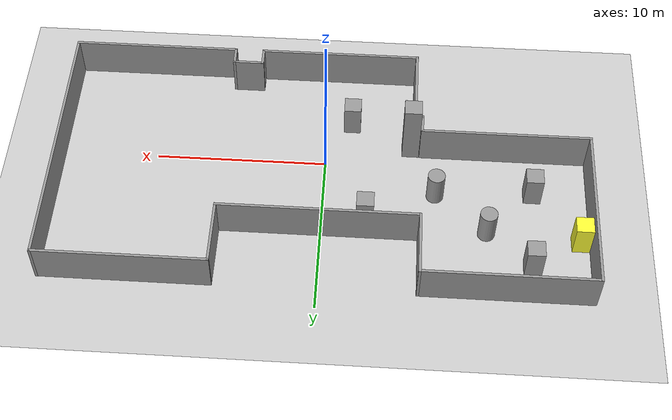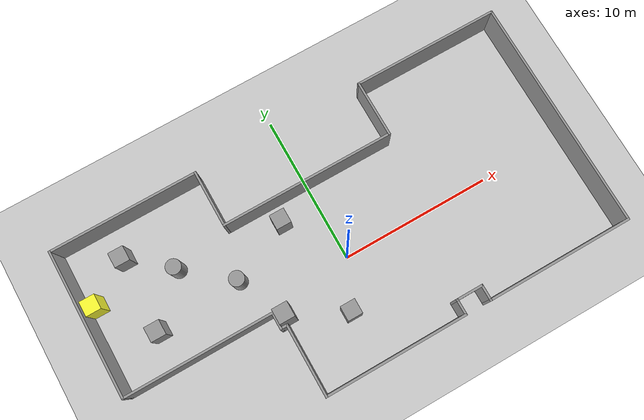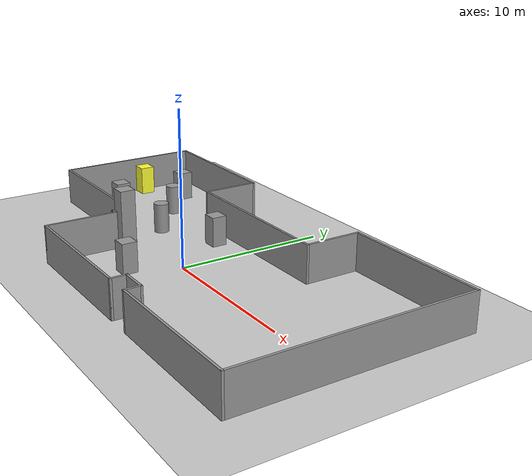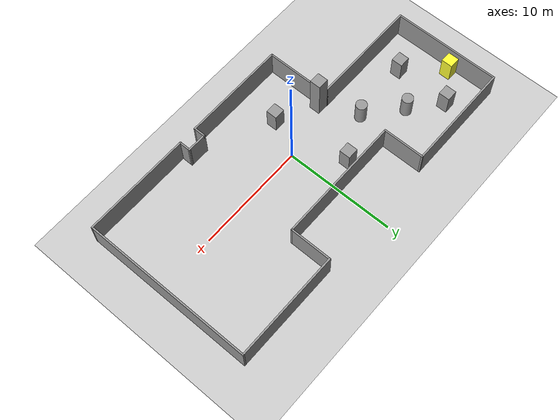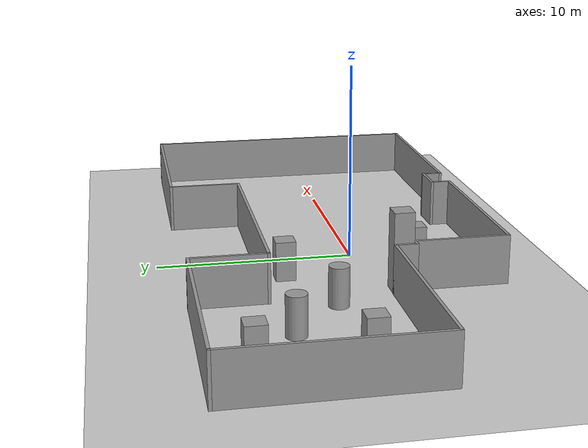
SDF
<sdf version="1.7">
 <world name="default">
  <model name="ground_plane">
   <static>1</static>
   <link name="link">
    <collision name="collision">
     <geometry><plane><normal>0 0 1</normal><size>100 100</size></plane></geometry>
     <surface>
      <contact><collide_bitmask>65535</collide_bitmask></contact>
      <friction><ode><mu>100</mu><mu2>50</mu2></ode></friction>
     </surface>
    </collision>
    <visual name="visual">
     <cast_shadows>0</cast_shadows>
     <geometry><plane><normal>0 0 1</normal><size>100 100</size></plane></geometry>
     <material>
      <script><uri>file://media/materials/scripts/gazebo.material</uri><name>Gazebo/Grey</name></script>
     </material>
    </visual>
   </link>
  </model>
  <model name="Engine5_B1">
   <link name="Wall_0">
    <pose>15.51 0 0 0 0 -1.5708</pose>
    <visual name="Wall_0_Visual">
     <pose>0 0 1.25 0 -0 0</pose>
     <geometry><box><size>15.62 0.15 2.5</size></box></geometry>
     <material>
      <script><uri>file://media/materials/scripts/gazebo.material</uri><name>Gazebo/Grey</name></script>
      <ambient>1 1 1 1</ambient>
      <shader type="pixel"/>
     </material>
     <meta><layer>0</layer></meta>
    </visual>
    <collision name="Wall_0_Collision">
     <pose>0 0 1.25 0 -0 0</pose>
     <geometry><box><size>15.62 0.15 2.5</size></box></geometry>
     <surface>
      <friction>
       <ode><mu>1</mu><mu2>1</mu2><fdir1>0 0 0</fdir1><slip1>0</slip1><slip2>0</slip2></ode>
       <torsional>
        <coefficient>1</coefficient>
        <patch_radius>0</patch_radius>
        <surface_radius>0</surface_radius>
        <use_patch_radius>1</use_patch_radius>
        <ode><slip>0</slip></ode>
       </torsional>
      </friction>
      <bounce><restitution_coefficient>0</restitution_coefficient><threshold>1e+06</threshold></bounce>
      <contact>
       <collide_without_contact>0</collide_without_contact>
       <collide_without_contact_bitmask>1</collide_without_contact_bitmask>
       <collide_bitmask>1</collide_bitmask>
       <ode>
        <soft_cfm>0</soft_cfm>
        <soft_erp>0.2</soft_erp>
        <kp>1e+13</kp>
        <kd>1</kd>
        <max_vel>0.01</max_vel>
        <min_depth>0</min_depth>
       </ode>
       <bullet>
        <split_impulse>1</split_impulse>
        <split_impulse_penetration_threshold>-0.01</split_impulse_penetration_threshold>
        <soft_cfm>0</soft_cfm>
        <soft_erp>0.2</soft_erp>
        <kp>1e+13</kp>
        <kd>1</kd>
       </bullet>
      </contact>
     </surface>
    </collision>
   </link>
   <link name="Wall_11">
    <pose>-10.62 7.735 0 0 -0 3.14159</pose>
    <visual name="Wall_11_Visual">
     <pose>0 0 1.25 0 -0 0</pose>
     <geometry><box><size>9.93 0.15 2.5</size></box></geometry>
     <material>
      <script><uri>file://media/materials/scripts/gazebo.material</uri><name>Gazebo/Grey</name></script>
      <ambient>1 1 1 1</ambient>
      <shader type="pixel"/>
     </material>
     <meta><layer>0</layer></meta>
    </visual>
    <collision name="Wall_11_Collision">
     <pose>0 0 1.25 0 -0 0</pose>
     <geometry><box><size>9.93 0.15 2.5</size></box></geometry>
     <surface>
      <friction>
       <ode><mu>1</mu><mu2>1</mu2><fdir1>0 0 0</fdir1><slip1>0</slip1><slip2>0</slip2></ode>
       <torsional>
        <coefficient>1</coefficient>
        <patch_radius>0</patch_radius>
        <surface_radius>0</surface_radius>
        <use_patch_radius>1</use_patch_radius>
        <ode><slip>0</slip></ode>
       </torsional>
      </friction>
      <bounce><restitution_coefficient>0</restitution_coefficient><threshold>1e+06</threshold></bounce>
      <contact>
       <collide_without_contact>0</collide_without_contact>
       <collide_without_contact_bitmask>1</collide_without_contact_bitmask>
       <collide_bitmask>1</collide_bitmask>
       <ode>
        <soft_cfm>0</soft_cfm>
        <soft_erp>0.2</soft_erp>
        <kp>1e+13</kp>
        <kd>1</kd>
        <max_vel>0.01</max_vel>
        <min_depth>0</min_depth>
       </ode>
       <bullet>
        <split_impulse>1</split_impulse>
        <split_impulse_penetration_threshold>-0.01</split_impulse_penetration_threshold>
        <soft_cfm>0</soft_cfm>
        <soft_erp>0.2</soft_erp>
        <kp>1e+13</kp>
        <kd>1</kd>
       </bullet>
      </contact>
     </surface>
    </collision>
   </link>
   <link name="Wall_13">
    <pose>-15.51 2.86 0 0 0 -1.5708</pose>
    <visual name="Wall_13_Visual">
     <pose>0 0 1.25 0 -0 0</pose>
     <geometry><box><size>9.9 0.15 2.5</size></box></geometry>
     <material>
      <script><uri>file://media/materials/scripts/gazebo.material</uri><name>Gazebo/Grey</name></script>
      <ambient>1 1 1 1</ambient>
      <shader type="pixel"/>
     </material>
     <meta><layer>0</layer></meta>
    </visual>
    <collision name="Wall_13_Collision">
     <pose>0 0 1.25 0 -0 0</pose>
     <geometry><box><size>9.9 0.15 2.5</size></box></geometry>
     <surface>
      <friction>
       <ode><mu>1</mu><mu2>1</mu2><fdir1>0 0 0</fdir1><slip1>0</slip1><slip2>0</slip2></ode>
       <torsional>
        <coefficient>1</coefficient>
        <patch_radius>0</patch_radius>
        <surface_radius>0</surface_radius>
        <use_patch_radius>1</use_patch_radius>
        <ode><slip>0</slip></ode>
       </torsional>
      </friction>
      <bounce><restitution_coefficient>0</restitution_coefficient><threshold>1e+06</threshold></bounce>
      <contact>
       <collide_without_contact>0</collide_without_contact>
       <collide_without_contact_bitmask>1</collide_without_contact_bitmask>
       <collide_bitmask>1</collide_bitmask>
       <ode>
        <soft_cfm>0</soft_cfm>
        <soft_erp>0.2</soft_erp>
        <kp>1e+13</kp>
        <kd>1</kd>
        <max_vel>0.01</max_vel>
        <min_depth>0</min_depth>
       </ode>
       <bullet>
        <split_impulse>1</split_impulse>
        <split_impulse_penetration_threshold>-0.01</split_impulse_penetration_threshold>
        <soft_cfm>0</soft_cfm>
        <soft_erp>0.2</soft_erp>
        <kp>1e+13</kp>
        <kd>1</kd>
       </bullet>
      </contact>
     </surface>
    </collision>
   </link>
   <link name="Wall_15">
    <pose>-10.62 -2.015 0 0 -0 0</pose>
    <visual name="Wall_15_Visual">
     <pose>0 0 1.25 0 -0 0</pose>
     <geometry><box><size>9.93 0.15 2.5</size></box></geometry>
     <material>
      <script><uri>file://media/materials/scripts/gazebo.material</uri><name>Gazebo/Grey</name></script>
      <ambient>1 1 1 1</ambient>
      <shader type="pixel"/>
     </material>
     <meta><layer>0</layer></meta>
    </visual>
    <collision name="Wall_15_Collision">
     <pose>0 0 1.25 0 -0 0</pose>
     <geometry><box><size>9.93 0.15 2.5</size></box></geometry>
     <surface>
      <friction>
       <ode><mu>1</mu><mu2>1</mu2><fdir1>0 0 0</fdir1><slip1>0</slip1><slip2>0</slip2></ode>
       <torsional>
        <coefficient>1</coefficient>
        <patch_radius>0</patch_radius>
        <surface_radius>0</surface_radius>
        <use_patch_radius>1</use_patch_radius>
        <ode><slip>0</slip></ode>
       </torsional>
      </friction>
      <bounce><restitution_coefficient>0</restitution_coefficient><threshold>1e+06</threshold></bounce>
      <contact>
       <collide_without_contact>0</collide_without_contact>
       <collide_without_contact_bitmask>1</collide_without_contact_bitmask>
       <collide_bitmask>1</collide_bitmask>
       <ode>
        <soft_cfm>0</soft_cfm>
        <soft_erp>0.2</soft_erp>
        <kp>1e+13</kp>
        <kd>1</kd>
        <max_vel>0.01</max_vel>
        <min_depth>0</min_depth>
       </ode>
       <bullet>
        <split_impulse>1</split_impulse>
        <split_impulse_penetration_threshold>-0.01</split_impulse_penetration_threshold>
        <soft_cfm>0</soft_cfm>
        <soft_erp>0.2</soft_erp>
        <kp>1e+13</kp>
        <kd>1</kd>
       </bullet>
      </contact>
     </surface>
    </collision>
   </link>
   <link name="Wall_17">
    <pose>-5.73 -2.535 0 0 0 -1.5708</pose>
    <visual name="Wall_17_Visual">
     <pose>0 0 1.25 0 -0 0</pose>
     <geometry><box><size>1.19 0.15 2.5</size></box></geometry>
     <material>
      <script><uri>file://media/materials/scripts/gazebo.material</uri><name>Gazebo/Grey</name></script>
      <ambient>1 1 1 1</ambient>
      <shader type="pixel"/>
     </material>
     <meta><layer>0</layer></meta>
    </visual>
    <collision name="Wall_17_Collision">
     <pose>0 0 1.25 0 -0 0</pose>
     <geometry><box><size>1.19 0.15 2.5</size></box></geometry>
     <surface>
      <friction>
       <ode><mu>1</mu><mu2>1</mu2><fdir1>0 0 0</fdir1><slip1>0</slip1><slip2>0</slip2></ode>
       <torsional>
        <coefficient>1</coefficient>
        <patch_radius>0</patch_radius>
        <surface_radius>0</surface_radius>
        <use_patch_radius>1</use_patch_radius>
        <ode><slip>0</slip></ode>
       </torsional>
      </friction>
      <bounce><restitution_coefficient>0</restitution_coefficient><threshold>1e+06</threshold></bounce>
      <contact>
       <collide_without_contact>0</collide_without_contact>
       <collide_without_contact_bitmask>1</collide_without_contact_bitmask>
       <collide_bitmask>1</collide_bitmask>
       <ode>
        <soft_cfm>0</soft_cfm>
        <soft_erp>0.2</soft_erp>
        <kp>1e+13</kp>
        <kd>1</kd>
        <max_vel>0.01</max_vel>
        <min_depth>0</min_depth>
       </ode>
       <bullet>
        <split_impulse>1</split_impulse>
        <split_impulse_penetration_threshold>-0.01</split_impulse_penetration_threshold>
        <soft_cfm>0</soft_cfm>
        <soft_erp>0.2</soft_erp>
        <kp>1e+13</kp>
        <kd>1</kd>
       </bullet>
      </contact>
     </surface>
    </collision>
   </link>
   <link name="Wall_19">
    <pose>-5.53 -3.055 0 0 -0 0</pose>
    <visual name="Wall_19_Visual">
     <pose>0 0 1.25 0 -0 0</pose>
     <geometry><box><size>0.55 0.15 2.5</size></box></geometry>
     <material>
      <script><uri>file://media/materials/scripts/gazebo.material</uri><name>Gazebo/Grey</name></script>
      <ambient>1 1 1 1</ambient>
      <shader type="pixel"/>
     </material>
     <meta><layer>0</layer></meta>
    </visual>
    <collision name="Wall_19_Collision">
     <pose>0 0 1.25 0 -0 0</pose>
     <geometry><box><size>0.55 0.15 2.5</size></box></geometry>
     <surface>
      <friction>
       <ode><mu>1</mu><mu2>1</mu2><fdir1>0 0 0</fdir1><slip1>0</slip1><slip2>0</slip2></ode>
       <torsional>
        <coefficient>1</coefficient>
        <patch_radius>0</patch_radius>
        <surface_radius>0</surface_radius>
        <use_patch_radius>1</use_patch_radius>
        <ode><slip>0</slip></ode>
       </torsional>
      </friction>
      <bounce><restitution_coefficient>0</restitution_coefficient><threshold>1e+06</threshold></bounce>
      <contact>
       <collide_without_contact>0</collide_without_contact>
       <collide_without_contact_bitmask>1</collide_without_contact_bitmask>
       <collide_bitmask>1</collide_bitmask>
       <ode>
        <soft_cfm>0</soft_cfm>
        <soft_erp>0.2</soft_erp>
        <kp>1e+13</kp>
        <kd>1</kd>
        <max_vel>0.01</max_vel>
        <min_depth>0</min_depth>
       </ode>
       <bullet>
        <split_impulse>1</split_impulse>
        <split_impulse_penetration_threshold>-0.01</split_impulse_penetration_threshold>
        <soft_cfm>0</soft_cfm>
        <soft_erp>0.2</soft_erp>
        <kp>1e+13</kp>
        <kd>1</kd>
       </bullet>
      </contact>
     </surface>
    </collision>
   </link>
   <link name="Wall_21">
    <pose>-5.33 -5.395 0 0 0 -1.5708</pose>
    <visual name="Wall_21_Visual">
     <pose>0 0 1.25 0 -0 0</pose>
     <geometry><box><size>4.83 0.15 2.5</size></box></geometry>
     <material>
      <script><uri>file://media/materials/scripts/gazebo.material</uri><name>Gazebo/Grey</name></script>
      <ambient>1 1 1 1</ambient>
      <shader type="pixel"/>
     </material>
     <meta><layer>0</layer></meta>
    </visual>
    <collision name="Wall_21_Collision">
     <pose>0 0 1.25 0 -0 0</pose>
     <geometry><box><size>4.83 0.15 2.5</size></box></geometry>
     <surface>
      <friction>
       <ode><mu>1</mu><mu2>1</mu2><fdir1>0 0 0</fdir1><slip1>0</slip1><slip2>0</slip2></ode>
       <torsional>
        <coefficient>1</coefficient>
        <patch_radius>0</patch_radius>
        <surface_radius>0</surface_radius>
        <use_patch_radius>1</use_patch_radius>
        <ode><slip>0</slip></ode>
       </torsional>
      </friction>
      <bounce><restitution_coefficient>0</restitution_coefficient><threshold>1e+06</threshold></bounce>
      <contact>
       <collide_without_contact>0</collide_without_contact>
       <collide_without_contact_bitmask>1</collide_without_contact_bitmask>
       <collide_bitmask>1</collide_bitmask>
       <ode>
        <soft_cfm>0</soft_cfm>
        <soft_erp>0.2</soft_erp>
        <kp>1e+13</kp>
        <kd>1</kd>
        <max_vel>0.01</max_vel>
        <min_depth>0</min_depth>
       </ode>
       <bullet>
        <split_impulse>1</split_impulse>
        <split_impulse_penetration_threshold>-0.01</split_impulse_penetration_threshold>
        <soft_cfm>0</soft_cfm>
        <soft_erp>0.2</soft_erp>
        <kp>1e+13</kp>
        <kd>1</kd>
       </bullet>
      </contact>
     </surface>
    </collision>
   </link>
   <link name="Wall_25">
    <pose>10.64 -7.735 0 0 -0 3.14159</pose>
    <visual name="Wall_25_Visual">
     <pose>0 0 1.25 0 -0 0</pose>
     <geometry><box><size>9.89 0.15 2.5</size></box></geometry>
     <material>
      <script><uri>file://media/materials/scripts/gazebo.material</uri><name>Gazebo/Grey</name></script>
      <ambient>1 1 1 1</ambient>
      <shader type="pixel"/>
     </material>
     <meta><layer>0</layer></meta>
    </visual>
    <collision name="Wall_25_Collision">
     <pose>0 0 1.25 0 -0 0</pose>
     <geometry><box><size>9.89 0.15 2.5</size></box></geometry>
     <surface>
      <friction>
       <ode><mu>1</mu><mu2>1</mu2><fdir1>0 0 0</fdir1><slip1>0</slip1><slip2>0</slip2></ode>
       <torsional>
        <coefficient>1</coefficient>
        <patch_radius>0</patch_radius>
        <surface_radius>0</surface_radius>
        <use_patch_radius>1</use_patch_radius>
        <ode><slip>0</slip></ode>
       </torsional>
      </friction>
      <bounce><restitution_coefficient>0</restitution_coefficient><threshold>1e+06</threshold></bounce>
      <contact>
       <collide_without_contact>0</collide_without_contact>
       <collide_without_contact_bitmask>1</collide_without_contact_bitmask>
       <collide_bitmask>1</collide_bitmask>
       <ode>
        <soft_cfm>0</soft_cfm>
        <soft_erp>0.2</soft_erp>
        <kp>1e+13</kp>
        <kd>1</kd>
        <max_vel>0.01</max_vel>
        <min_depth>0</min_depth>
       </ode>
       <bullet>
        <split_impulse>1</split_impulse>
        <split_impulse_penetration_threshold>-0.01</split_impulse_penetration_threshold>
        <soft_cfm>0</soft_cfm>
        <soft_erp>0.2</soft_erp>
        <kp>1e+13</kp>
        <kd>1</kd>
       </bullet>
      </contact>
     </surface>
    </collision>
   </link>
   <link name="Wall_27">
    <pose>5.77 -7.24 0 0 -0 1.5708</pose>
    <visual name="Wall_27_Visual">
     <pose>0 0 1.25 0 -0 0</pose>
     <geometry><box><size>1.14 0.15 2.5</size></box></geometry>
     <material>
      <script><uri>file://media/materials/scripts/gazebo.material</uri><name>Gazebo/Grey</name></script>
      <ambient>1 1 1 1</ambient>
      <shader type="pixel"/>
     </material>
     <meta><layer>0</layer></meta>
    </visual>
    <collision name="Wall_27_Collision">
     <pose>0 0 1.25 0 -0 0</pose>
     <geometry><box><size>1.14 0.15 2.5</size></box></geometry>
     <surface>
      <friction>
       <ode><mu>1</mu><mu2>1</mu2><fdir1>0 0 0</fdir1><slip1>0</slip1><slip2>0</slip2></ode>
       <torsional>
        <coefficient>1</coefficient>
        <patch_radius>0</patch_radius>
        <surface_radius>0</surface_radius>
        <use_patch_radius>1</use_patch_radius>
        <ode><slip>0</slip></ode>
       </torsional>
      </friction>
      <bounce><restitution_coefficient>0</restitution_coefficient><threshold>1e+06</threshold></bounce>
      <contact>
       <collide_without_contact>0</collide_without_contact>
       <collide_without_contact_bitmask>1</collide_without_contact_bitmask>
       <collide_bitmask>1</collide_bitmask>
       <ode>
        <soft_cfm>0</soft_cfm>
        <soft_erp>0.2</soft_erp>
        <kp>1e+13</kp>
        <kd>1</kd>
        <max_vel>0.01</max_vel>
        <min_depth>0</min_depth>
       </ode>
       <bullet>
        <split_impulse>1</split_impulse>
        <split_impulse_penetration_threshold>-0.01</split_impulse_penetration_threshold>
        <soft_cfm>0</soft_cfm>
        <soft_erp>0.2</soft_erp>
        <kp>1e+13</kp>
        <kd>1</kd>
       </bullet>
      </contact>
     </surface>
    </collision>
   </link>
   <link name="Wall_29">
    <pose>4.915 -6.745 0 0 -0 3.14159</pose>
    <visual name="Wall_29_Visual">
     <pose>0 0 1.25 0 -0 0</pose>
     <geometry><box><size>1.86 0.15 2.5</size></box></geometry>
     <material>
      <script><uri>file://media/materials/scripts/gazebo.material</uri><name>Gazebo/Grey</name></script>
      <ambient>1 1 1 1</ambient>
      <shader type="pixel"/>
     </material>
     <meta><layer>0</layer></meta>
    </visual>
    <collision name="Wall_29_Collision">
     <pose>0 0 1.25 0 -0 0</pose>
     <geometry><box><size>1.86 0.15 2.5</size></box></geometry>
     <surface>
      <friction>
       <ode><mu>1</mu><mu2>1</mu2><fdir1>0 0 0</fdir1><slip1>0</slip1><slip2>0</slip2></ode>
       <torsional>
        <coefficient>1</coefficient>
        <patch_radius>0</patch_radius>
        <surface_radius>0</surface_radius>
        <use_patch_radius>1</use_patch_radius>
        <ode><slip>0</slip></ode>
       </torsional>
      </friction>
      <bounce><restitution_coefficient>0</restitution_coefficient><threshold>1e+06</threshold></bounce>
      <contact>
       <collide_without_contact>0</collide_without_contact>
       <collide_without_contact_bitmask>1</collide_without_contact_bitmask>
       <collide_bitmask>1</collide_bitmask>
       <ode>
        <soft_cfm>0</soft_cfm>
        <soft_erp>0.2</soft_erp>
        <kp>1e+13</kp>
        <kd>1</kd>
        <max_vel>0.01</max_vel>
        <min_depth>0</min_depth>
       </ode>
       <bullet>
        <split_impulse>1</split_impulse>
        <split_impulse_penetration_threshold>-0.01</split_impulse_penetration_threshold>
        <soft_cfm>0</soft_cfm>
        <soft_erp>0.2</soft_erp>
        <kp>1e+13</kp>
        <kd>1</kd>
       </bullet>
      </contact>
     </surface>
    </collision>
   </link>
   <link name="Wall_3">
    <pose>10.64 7.735 0 0 -0 3.14159</pose>
    <visual name="Wall_3_Visual">
     <pose>0 0 1.25 0 -0 0</pose>
     <geometry><box><size>9.89 0.15 2.5</size></box></geometry>
     <material>
      <script><uri>file://media/materials/scripts/gazebo.material</uri><name>Gazebo/Grey</name></script>
      <ambient>1 1 1 1</ambient>
      <shader type="pixel"/>
     </material>
     <meta><layer>0</layer></meta>
    </visual>
    <collision name="Wall_3_Collision">
     <pose>0 0 1.25 0 -0 0</pose>
     <geometry><box><size>9.89 0.15 2.5</size></box></geometry>
     <surface>
      <friction>
       <ode><mu>1</mu><mu2>1</mu2><fdir1>0 0 0</fdir1><slip1>0</slip1><slip2>0</slip2></ode>
       <torsional>
        <coefficient>1</coefficient>
        <patch_radius>0</patch_radius>
        <surface_radius>0</surface_radius>
        <use_patch_radius>1</use_patch_radius>
        <ode><slip>0</slip></ode>
       </torsional>
      </friction>
      <bounce><restitution_coefficient>0</restitution_coefficient><threshold>1e+06</threshold></bounce>
      <contact>
       <collide_without_contact>0</collide_without_contact>
       <collide_without_contact_bitmask>1</collide_without_contact_bitmask>
       <collide_bitmask>1</collide_bitmask>
       <ode>
        <soft_cfm>0</soft_cfm>
        <soft_erp>0.2</soft_erp>
        <kp>1e+13</kp>
        <kd>1</kd>
        <max_vel>0.01</max_vel>
        <min_depth>0</min_depth>
       </ode>
       <bullet>
        <split_impulse>1</split_impulse>
        <split_impulse_penetration_threshold>-0.01</split_impulse_penetration_threshold>
        <soft_cfm>0</soft_cfm>
        <soft_erp>0.2</soft_erp>
        <kp>1e+13</kp>
        <kd>1</kd>
       </bullet>
      </contact>
     </surface>
    </collision>
   </link>
   <link name="Wall_31">
    <pose>4.06 -7.24 0 0 0 -1.5708</pose>
    <visual name="Wall_31_Visual">
     <pose>0 0 1.25 0 -0 0</pose>
     <geometry><box><size>1.14 0.15 2.5</size></box></geometry>
     <material>
      <script><uri>file://media/materials/scripts/gazebo.material</uri><name>Gazebo/Grey</name></script>
      <ambient>1 1 1 1</ambient>
      <shader type="pixel"/>
     </material>
     <meta><layer>0</layer></meta>
    </visual>
    <collision name="Wall_31_Collision">
     <pose>0 0 1.25 0 -0 0</pose>
     <geometry><box><size>1.14 0.15 2.5</size></box></geometry>
     <surface>
      <friction>
       <ode><mu>1</mu><mu2>1</mu2><fdir1>0 0 0</fdir1><slip1>0</slip1><slip2>0</slip2></ode>
       <torsional>
        <coefficient>1</coefficient>
        <patch_radius>0</patch_radius>
        <surface_radius>0</surface_radius>
        <use_patch_radius>1</use_patch_radius>
        <ode><slip>0</slip></ode>
       </torsional>
      </friction>
      <bounce><restitution_coefficient>0</restitution_coefficient><threshold>1e+06</threshold></bounce>
      <contact>
       <collide_without_contact>0</collide_without_contact>
       <collide_without_contact_bitmask>1</collide_without_contact_bitmask>
       <collide_bitmask>1</collide_bitmask>
       <ode>
        <soft_cfm>0</soft_cfm>
        <soft_erp>0.2</soft_erp>
        <kp>1e+13</kp>
        <kd>1</kd>
        <max_vel>0.01</max_vel>
        <min_depth>0</min_depth>
       </ode>
       <bullet>
        <split_impulse>1</split_impulse>
        <split_impulse_penetration_threshold>-0.01</split_impulse_penetration_threshold>
        <soft_cfm>0</soft_cfm>
        <soft_erp>0.2</soft_erp>
        <kp>1e+13</kp>
        <kd>1</kd>
       </bullet>
      </contact>
     </surface>
    </collision>
   </link>
   <link name="Wall_33">
    <pose>-0.635 -7.735 0 0 -0 0</pose>
    <visual name="Wall_33_Visual">
     <pose>0 0 1.25 0 -0 0</pose>
     <geometry><box><size>9.54 0.15 2.5</size></box></geometry>
     <material>
      <script><uri>file://media/materials/scripts/gazebo.material</uri><name>Gazebo/Grey</name></script>
      <ambient>1 1 1 1</ambient>
      <shader type="pixel"/>
     </material>
     <meta><layer>0</layer></meta>
    </visual>
    <collision name="Wall_33_Collision">
     <pose>0 0 1.25 0 -0 0</pose>
     <geometry><box><size>9.54 0.15 2.5</size></box></geometry>
     <surface>
      <friction>
       <ode><mu>1</mu><mu2>1</mu2><fdir1>0 0 0</fdir1><slip1>0</slip1><slip2>0</slip2></ode>
       <torsional>
        <coefficient>1</coefficient>
        <patch_radius>0</patch_radius>
        <surface_radius>0</surface_radius>
        <use_patch_radius>1</use_patch_radius>
        <ode><slip>0</slip></ode>
       </torsional>
      </friction>
      <bounce><restitution_coefficient>0</restitution_coefficient><threshold>1e+06</threshold></bounce>
      <contact>
       <collide_without_contact>0</collide_without_contact>
       <collide_without_contact_bitmask>1</collide_without_contact_bitmask>
       <collide_bitmask>1</collide_bitmask>
       <ode>
        <soft_cfm>0</soft_cfm>
        <soft_erp>0.2</soft_erp>
        <kp>1e+13</kp>
        <kd>1</kd>
        <max_vel>0.01</max_vel>
        <min_depth>0</min_depth>
       </ode>
       <bullet>
        <split_impulse>1</split_impulse>
        <split_impulse_penetration_threshold>-0.01</split_impulse_penetration_threshold>
        <soft_cfm>0</soft_cfm>
        <soft_erp>0.2</soft_erp>
        <kp>1e+13</kp>
        <kd>1</kd>
       </bullet>
      </contact>
     </surface>
    </collision>
   </link>
   <link name="Wall_5">
    <pose>5.77 5.87 0 0 0 -1.5708</pose>
    <visual name="Wall_5_Visual">
     <pose>0 0 1.25 0 -0 0</pose>
     <geometry><box><size>3.88 0.15 2.5</size></box></geometry>
     <material>
      <script><uri>file://media/materials/scripts/gazebo.material</uri><name>Gazebo/Grey</name></script>
      <ambient>1 1 1 1</ambient>
      <shader type="pixel"/>
     </material>
     <meta><layer>0</layer></meta>
    </visual>
    <collision name="Wall_5_Collision">
     <pose>0 0 1.25 0 -0 0</pose>
     <geometry><box><size>3.88 0.15 2.5</size></box></geometry>
     <surface>
      <friction>
       <ode><mu>1</mu><mu2>1</mu2><fdir1>0 0 0</fdir1><slip1>0</slip1><slip2>0</slip2></ode>
       <torsional>
        <coefficient>1</coefficient>
        <patch_radius>0</patch_radius>
        <surface_radius>0</surface_radius>
        <use_patch_radius>1</use_patch_radius>
        <ode><slip>0</slip></ode>
       </torsional>
      </friction>
      <bounce><restitution_coefficient>0</restitution_coefficient><threshold>1e+06</threshold></bounce>
      <contact>
       <collide_without_contact>0</collide_without_contact>
       <collide_without_contact_bitmask>1</collide_without_contact_bitmask>
       <collide_bitmask>1</collide_bitmask>
       <ode>
        <soft_cfm>0</soft_cfm>
        <soft_erp>0.2</soft_erp>
        <kp>1e+13</kp>
        <kd>1</kd>
        <max_vel>0.01</max_vel>
        <min_depth>0</min_depth>
       </ode>
       <bullet>
        <split_impulse>1</split_impulse>
        <split_impulse_penetration_threshold>-0.01</split_impulse_penetration_threshold>
        <soft_cfm>0</soft_cfm>
        <soft_erp>0.2</soft_erp>
        <kp>1e+13</kp>
        <kd>1</kd>
       </bullet>
      </contact>
     </surface>
    </collision>
   </link>
   <link name="Wall_7">
    <pose>0.02 4.005 0 0 -0 3.14159</pose>
    <visual name="Wall_7_Visual">
     <pose>0 0 1.25 0 -0 0</pose>
     <geometry><box><size>11.65 0.15 2.5</size></box></geometry>
     <material>
      <script><uri>file://media/materials/scripts/gazebo.material</uri><name>Gazebo/Grey</name></script>
      <ambient>1 1 1 1</ambient>
      <shader type="pixel"/>
     </material>
     <meta><layer>0</layer></meta>
    </visual>
    <collision name="Wall_7_Collision">
     <pose>0 0 1.25 0 -0 0</pose>
     <geometry><box><size>11.65 0.15 2.5</size></box></geometry>
     <surface>
      <friction>
       <ode><mu>1</mu><mu2>1</mu2><fdir1>0 0 0</fdir1><slip1>0</slip1><slip2>0</slip2></ode>
       <torsional>
        <coefficient>1</coefficient>
        <patch_radius>0</patch_radius>
        <surface_radius>0</surface_radius>
        <use_patch_radius>1</use_patch_radius>
        <ode><slip>0</slip></ode>
       </torsional>
      </friction>
      <bounce><restitution_coefficient>0</restitution_coefficient><threshold>1e+06</threshold></bounce>
      <contact>
       <collide_without_contact>0</collide_without_contact>
       <collide_without_contact_bitmask>1</collide_without_contact_bitmask>
       <collide_bitmask>1</collide_bitmask>
       <ode>
        <soft_cfm>0</soft_cfm>
        <soft_erp>0.2</soft_erp>
        <kp>1e+13</kp>
        <kd>1</kd>
        <max_vel>0.01</max_vel>
        <min_depth>0</min_depth>
       </ode>
       <bullet>
        <split_impulse>1</split_impulse>
        <split_impulse_penetration_threshold>-0.01</split_impulse_penetration_threshold>
        <soft_cfm>0</soft_cfm>
        <soft_erp>0.2</soft_erp>
        <kp>1e+13</kp>
        <kd>1</kd>
       </bullet>
      </contact>
     </surface>
    </collision>
   </link>
   <link name="Wall_9">
    <pose>-5.73 5.87 0 0 -0 1.5708</pose>
    <visual name="Wall_9_Visual">
     <pose>0 0 1.25 0 -0 0</pose>
     <geometry><box><size>3.88 0.15 2.5</size></box></geometry>
     <material>
      <script><uri>file://media/materials/scripts/gazebo.material</uri><name>Gazebo/Grey</name></script>
      <ambient>1 1 1 1</ambient>
      <shader type="pixel"/>
     </material>
     <meta><layer>0</layer></meta>
    </visual>
    <collision name="Wall_9_Collision">
     <pose>0 0 1.25 0 -0 0</pose>
     <geometry><box><size>3.88 0.15 2.5</size></box></geometry>
     <surface>
      <friction>
       <ode><mu>1</mu><mu2>1</mu2><fdir1>0 0 0</fdir1><slip1>0</slip1><slip2>0</slip2></ode>
       <torsional>
        <coefficient>1</coefficient>
        <patch_radius>0</patch_radius>
        <surface_radius>0</surface_radius>
        <use_patch_radius>1</use_patch_radius>
        <ode><slip>0</slip></ode>
       </torsional>
      </friction>
      <bounce><restitution_coefficient>0</restitution_coefficient><threshold>1e+06</threshold></bounce>
      <contact>
       <collide_without_contact>0</collide_without_contact>
       <collide_without_contact_bitmask>1</collide_without_contact_bitmask>
       <collide_bitmask>1</collide_bitmask>
       <ode>
        <soft_cfm>0</soft_cfm>
        <soft_erp>0.2</soft_erp>
        <kp>1e+13</kp>
        <kd>1</kd>
        <max_vel>0.01</max_vel>
        <min_depth>0</min_depth>
       </ode>
       <bullet>
        <split_impulse>1</split_impulse>
        <split_impulse_penetration_threshold>-0.01</split_impulse_penetration_threshold>
        <soft_cfm>0</soft_cfm>
        <soft_erp>0.2</soft_erp>
        <kp>1e+13</kp>
        <kd>1</kd>
       </bullet>
      </contact>
     </surface>
    </collision>
   </link>
   <static>1</static>
   <pose>0.1142 1.07644 0 0 -0 0</pose>
  </model>
  <model name="box_Z_2m_clone_0_clone_0_clone_1">
   <link name="link">
    <inertial>
     <mass>200</mass>
     <inertia><ixx>83.3333</ixx><ixy>0</ixy><ixz>0</ixz><iyy>83.3333</iyy><iyz>0</iyz><izz>33.3333</izz></inertia>
    </inertial>
    <visual name="visual">
     <geometry><box><size>1 1 2</size></box></geometry>
     <material>
      <script><name>Gazebo/Grey</name><uri>file://media/materials/scripts/gazebo.material</uri></script>
      <shader type="pixel"><normal_map>__default__</normal_map></shader>
      <ambient>0.3 0.3 0.3 1</ambient>
      <diffuse>0.7 0.7 0.7 1</diffuse>
      <specular>0.01 0.01 0.01 1</specular>
      <emissive>0 0 0 1</emissive>
     </material>
    </visual>
    <collision name="collision">
     <geometry><box><size>1 1 2</size></box></geometry>
     <surface>
      <friction>
       <ode><mu>1</mu><mu2>1</mu2><fdir1>0 0 0</fdir1><slip1>0</slip1><slip2>0</slip2></ode>
       <torsional>
        <coefficient>1</coefficient>
        <patch_radius>0</patch_radius>
        <surface_radius>0</surface_radius>
        <use_patch_radius>1</use_patch_radius>
        <ode><slip>0</slip></ode>
       </torsional>
      </friction>
      <bounce><restitution_coefficient>0</restitution_coefficient><threshold>1e+06</threshold></bounce>
      <contact>
       <collide_without_contact>0</collide_without_contact>
       <collide_without_contact_bitmask>1</collide_without_contact_bitmask>
       <collide_bitmask>1</collide_bitmask>
       <ode>
        <soft_cfm>0</soft_cfm>
        <soft_erp>0.2</soft_erp>
        <kp>1e+13</kp>
        <kd>1</kd>
        <max_vel>0.01</max_vel>
        <min_depth>0</min_depth>
       </ode>
       <bullet>
        <split_impulse>1</split_impulse>
        <split_impulse_penetration_threshold>-0.01</split_impulse_penetration_threshold>
        <soft_cfm>0</soft_cfm>
        <soft_erp>0.2</soft_erp>
        <kp>1e+13</kp>
        <kd>1</kd>
       </bullet>
      </contact>
     </surface>
    </collision>
   </link>
   <static>0</static>
   <pose>-2.49503 3.8507 1 0 -0 0</pose>
  </model>
  <model name="box_Z_2m_clone_0_clone_0_clone_0">
   <link name="link">
    <inertial>
     <mass>200</mass>
     <inertia><ixx>83.3333</ixx><ixy>0</ixy><ixz>0</ixz><iyy>83.3333</iyy><iyz>0</iyz><izz>33.3333</izz></inertia>
    </inertial>
    <visual name="visual">
     <geometry><box><size>1 1 2</size></box></geometry>
     <material>
      <script><name>Gazebo/Grey</name><uri>file://media/materials/scripts/gazebo.material</uri></script>
      <shader type="pixel"><normal_map>__default__</normal_map></shader>
      <ambient>0.3 0.3 0.3 1</ambient>
      <diffuse>0.7 0.7 0.7 1</diffuse>
      <specular>0.01 0.01 0.01 1</specular>
      <emissive>0 0 0 1</emissive>
     </material>
    </visual>
    <collision name="collision">
     <geometry><box><size>1 1 2</size></box></geometry>
     <surface>
      <friction>
       <ode><mu>1</mu><mu2>1</mu2><fdir1>0 0 0</fdir1><slip1>0</slip1><slip2>0</slip2></ode>
       <torsional>
        <coefficient>1</coefficient>
        <patch_radius>0</patch_radius>
        <surface_radius>0</surface_radius>
        <use_patch_radius>1</use_patch_radius>
        <ode><slip>0</slip></ode>
       </torsional>
      </friction>
      <bounce><restitution_coefficient>0</restitution_coefficient><threshold>1e+06</threshold></bounce>
      <contact>
       <collide_without_contact>0</collide_without_contact>
       <collide_without_contact_bitmask>1</collide_without_contact_bitmask>
       <collide_bitmask>1</collide_bitmask>
       <ode>
        <soft_cfm>0</soft_cfm>
        <soft_erp>0.2</soft_erp>
        <kp>1e+13</kp>
        <kd>1</kd>
        <max_vel>0.01</max_vel>
        <min_depth>0</min_depth>
       </ode>
       <bullet>
        <split_impulse>1</split_impulse>
        <split_impulse_penetration_threshold>-0.01</split_impulse_penetration_threshold>
        <soft_cfm>0</soft_cfm>
        <soft_erp>0.2</soft_erp>
        <kp>1e+13</kp>
        <kd>1</kd>
       </bullet>
      </contact>
     </surface>
    </collision>
   </link>
   <static>0</static>
   <pose>-1.4812 -3.05259 1 0 -0 0</pose>
  </model>
  <model name="Square_column_clone">
   <link name="link">
    <inertial>
     <mass>300</mass>
     <inertia><ixx>425</ixx><ixy>0</ixy><ixz>0</ixz><iyy>425</iyy><iyz>0</iyz><izz>50</izz></inertia>
    </inertial>
    <visual name="visual">
     <geometry><box><size>1 1 4</size></box></geometry>
     <material>
      <script><name>Gazebo/Grey</name><uri>file://media/materials/scripts/gazebo.material</uri></script>
      <shader type="pixel"><normal_map>__default__</normal_map></shader>
      <ambient>0.3 0.3 0.3 1</ambient>
      <diffuse>0.3 0.3 0.3 1</diffuse>
      <specular>0.01 0.01 0.01 1</specular>
      <emissive>0 0 0 1</emissive>
     </material>
    </visual>
    <collision name="collision">
     <geometry><box><size>1 1 4</size></box></geometry>
     <surface>
      <friction>
       <ode><mu>1</mu><mu2>1</mu2><fdir1>0 0 0</fdir1><slip1>0</slip1><slip2>0</slip2></ode>
       <torsional>
        <coefficient>1</coefficient>
        <patch_radius>0</patch_radius>
        <surface_radius>0</surface_radius>
        <use_patch_radius>1</use_patch_radius>
        <ode><slip>0</slip></ode>
       </torsional>
      </friction>
      <bounce><restitution_coefficient>0</restitution_coefficient><threshold>1e+06</threshold></bounce>
      <contact>
       <collide_without_contact>0</collide_without_contact>
       <collide_without_contact_bitmask>1</collide_without_contact_bitmask>
       <collide_bitmask>1</collide_bitmask>
       <ode>
        <soft_cfm>0</soft_cfm>
        <soft_erp>0.2</soft_erp>
        <kp>1e+13</kp>
        <kd>1</kd>
        <max_vel>0.01</max_vel>
        <min_depth>0</min_depth>
       </ode>
       <bullet>
        <split_impulse>1</split_impulse>
        <split_impulse_penetration_threshold>-0.01</split_impulse_penetration_threshold>
        <soft_cfm>0</soft_cfm>
        <soft_erp>0.2</soft_erp>
        <kp>1e+13</kp>
        <kd>1</kd>
       </bullet>
      </contact>
     </surface>
    </collision>
   </link>
   <static>0</static>
   <pose>-5.01985 -1.38503 2 -0 -0 -3.8e-05</pose>
  </model>
  <model name="cylinder_2m_clone">
   <link name="link">
    <inertial>
     <mass>200</mass>
     <inertia><ixx>79.1667</ixx><ixy>0</ixy><ixz>0</ixz><iyy>79.1667</iyy><iyz>0</iyz><izz>25</izz></inertia>
    </inertial>
    <visual name="visual">
     <geometry><cylinder><radius>0.5</radius><length>2</length></cylinder></geometry>
     <material>
      <script><name>Gazebo/Grey</name><uri>file://media/materials/scripts/gazebo.material</uri></script>
      <shader type="pixel"><normal_map>__default__</normal_map></shader>
      <ambient>0.3 0.3 0.3 1</ambient>
      <diffuse>0.7 0.7 0.7 1</diffuse>
      <specular>0.01 0.01 0.01 1</specular>
      <emissive>0 0 0 1</emissive>
     </material>
    </visual>
    <collision name="collision">
     <geometry><cylinder><radius>0.5</radius><length>2</length></cylinder></geometry>
     <surface>
      <friction>
       <ode><mu>1</mu><mu2>1</mu2><fdir1>0 0 0</fdir1><slip1>0</slip1><slip2>0</slip2></ode>
       <torsional>
        <coefficient>1</coefficient>
        <patch_radius>0</patch_radius>
        <surface_radius>0</surface_radius>
        <use_patch_radius>1</use_patch_radius>
        <ode><slip>0</slip></ode>
       </torsional>
      </friction>
      <bounce><restitution_coefficient>0</restitution_coefficient><threshold>1e+06</threshold></bounce>
      <contact>
       <collide_without_contact>0</collide_without_contact>
       <collide_without_contact_bitmask>1</collide_without_contact_bitmask>
       <collide_bitmask>1</collide_bitmask>
       <ode>
        <soft_cfm>0</soft_cfm>
        <soft_erp>0.2</soft_erp>
        <kp>1e+13</kp>
        <kd>1</kd>
        <max_vel>0.01</max_vel>
        <min_depth>0</min_depth>
       </ode>
       <bullet>
        <split_impulse>1</split_impulse>
        <split_impulse_penetration_threshold>-0.01</split_impulse_penetration_threshold>
        <soft_cfm>0</soft_cfm>
        <soft_erp>0.2</soft_erp>
        <kp>1e+13</kp>
        <kd>1</kd>
       </bullet>
      </contact>
     </surface>
    </collision>
   </link>
   <static>0</static>
   <pose>-6.50713 1.96109 0.999992 0 0 -0.000133</pose>
  </model>
  <model name="cylinder_2m_clone_clone">
   <link name="link">
    <inertial>
     <mass>200</mass>
     <inertia><ixx>79.1667</ixx><ixy>0</ixy><ixz>0</ixz><iyy>79.1667</iyy><iyz>0</iyz><izz>25</izz></inertia>
    </inertial>
    <visual name="visual">
     <geometry><cylinder><radius>0.5</radius><length>2</length></cylinder></geometry>
     <material>
      <script><name>Gazebo/Grey</name><uri>file://media/materials/scripts/gazebo.material</uri></script>
      <shader type="pixel"><normal_map>__default__</normal_map></shader>
      <ambient>0.3 0.3 0.3 1</ambient>
      <diffuse>0.7 0.7 0.7 1</diffuse>
      <specular>0.01 0.01 0.01 1</specular>
      <emissive>0 0 0 1</emissive>
     </material>
    </visual>
    <collision name="collision">
     <geometry><cylinder><radius>0.5</radius><length>2</length></cylinder></geometry>
     <surface>
      <friction>
       <ode><mu>1</mu><mu2>1</mu2><fdir1>0 0 0</fdir1><slip1>0</slip1><slip2>0</slip2></ode>
       <torsional>
        <coefficient>1</coefficient>
        <patch_radius>0</patch_radius>
        <surface_radius>0</surface_radius>
        <use_patch_radius>1</use_patch_radius>
        <ode><slip>0</slip></ode>
       </torsional>
      </friction>
      <bounce><restitution_coefficient>0</restitution_coefficient><threshold>1e+06</threshold></bounce>
      <contact>
       <collide_without_contact>0</collide_without_contact>
       <collide_without_contact_bitmask>1</collide_without_contact_bitmask>
       <collide_bitmask>1</collide_bitmask>
       <ode>
        <soft_cfm>0</soft_cfm>
        <soft_erp>0.2</soft_erp>
        <kp>1e+13</kp>
        <kd>1</kd>
        <max_vel>0.01</max_vel>
        <min_depth>0</min_depth>
       </ode>
       <bullet>
        <split_impulse>1</split_impulse>
        <split_impulse_penetration_threshold>-0.01</split_impulse_penetration_threshold>
        <soft_cfm>0</soft_cfm>
        <soft_erp>0.2</soft_erp>
        <kp>1e+13</kp>
        <kd>1</kd>
       </bullet>
      </contact>
     </surface>
    </collision>
   </link>
   <static>0</static>
   <pose>-9.46542 4.47583 0.999992 0 0 -0.000133</pose>
  </model>
  <model name="box_Z_2m_clone_0_clone_0_clone_3">
   <link name="link">
    <inertial>
     <mass>200</mass>
     <inertia><ixx>83.3333</ixx><ixy>0</ixy><ixz>0</ixz><iyy>83.3333</iyy><iyz>0</iyz><izz>33.3333</izz></inertia>
    </inertial>
    <visual name="visual">
     <geometry><box><size>1 1 2</size></box></geometry>
     <material>
      <script><name>Gazebo/Grey</name><uri>file://media/materials/scripts/gazebo.material</uri></script>
      <shader type="pixel"><normal_map>__default__</normal_map></shader>
      <ambient>0.3 0.3 0.3 1</ambient>
      <diffuse>0.7 0.7 0.7 1</diffuse>
      <specular>0.01 0.01 0.01 1</specular>
      <emissive>0 0 0 1</emissive>
     </material>
    </visual>
    <collision name="collision">
     <geometry><box><size>1 1 2</size></box></geometry>
     <surface>
      <friction>
       <ode><mu>1</mu><mu2>1</mu2><fdir1>0 0 0</fdir1><slip1>0</slip1><slip2>0</slip2></ode>
       <torsional>
        <coefficient>1</coefficient>
        <patch_radius>0</patch_radius>
        <surface_radius>0</surface_radius>
        <use_patch_radius>1</use_patch_radius>
        <ode><slip>0</slip></ode>
       </torsional>
      </friction>
      <bounce><restitution_coefficient>0</restitution_coefficient><threshold>1e+06</threshold></bounce>
      <contact>
       <collide_without_contact>0</collide_without_contact>
       <collide_without_contact_bitmask>1</collide_without_contact_bitmask>
       <collide_bitmask>1</collide_bitmask>
       <ode>
        <soft_cfm>0</soft_cfm>
        <soft_erp>0.2</soft_erp>
        <kp>1e+13</kp>
        <kd>1</kd>
        <max_vel>0.01</max_vel>
        <min_depth>0</min_depth>
       </ode>
       <bullet>
        <split_impulse>1</split_impulse>
        <split_impulse_penetration_threshold>-0.01</split_impulse_penetration_threshold>
        <soft_cfm>0</soft_cfm>
        <soft_erp>0.2</soft_erp>
        <kp>1e+13</kp>
        <kd>1</kd>
       </bullet>
      </contact>
     </surface>
    </collision>
   </link>
   <static>0</static>
   <pose>-12.0297 6.64334 1 0 -0 0</pose>
  </model>
  <model name="box_Z_2m_clone_0_clone_0_clone_2">
   <link name="link">
    <inertial>
     <mass>200</mass>
     <inertia><ixx>83.3333</ixx><ixy>0</ixy><ixz>0</ixz><iyy>83.3333</iyy><iyz>0</iyz><izz>33.3333</izz></inertia>
    </inertial>
    <visual name="visual">
     <geometry><box><size>1 1 2</size></box></geometry>
     <material>
      <script><name>Gazebo/Grey</name><uri>file://media/materials/scripts/gazebo.material</uri></script>
      <shader type="pixel"><normal_map>__default__</normal_map></shader>
      <ambient>0.3 0.3 0.3 1</ambient>
      <diffuse>0.7 0.7 0.7 1</diffuse>
      <specular>0.01 0.01 0.01 1</specular>
      <emissive>0 0 0 1</emissive>
     </material>
    </visual>
    <collision name="collision">
     <geometry><box><size>1 1 2</size></box></geometry>
     <surface>
      <friction>
       <ode><mu>1</mu><mu2>1</mu2><fdir1>0 0 0</fdir1><slip1>0</slip1><slip2>0</slip2></ode>
       <torsional>
        <coefficient>1</coefficient>
        <patch_radius>0</patch_radius>
        <surface_radius>0</surface_radius>
        <use_patch_radius>1</use_patch_radius>
        <ode><slip>0</slip></ode>
       </torsional>
      </friction>
      <bounce><restitution_coefficient>0</restitution_coefficient><threshold>1e+06</threshold></bounce>
      <contact>
       <collide_without_contact>0</collide_without_contact>
       <collide_without_contact_bitmask>1</collide_without_contact_bitmask>
       <collide_bitmask>1</collide_bitmask>
       <ode>
        <soft_cfm>0</soft_cfm>
        <soft_erp>0.2</soft_erp>
        <kp>1e+13</kp>
        <kd>1</kd>
        <max_vel>0.01</max_vel>
        <min_depth>0</min_depth>
       </ode>
       <bullet>
        <split_impulse>1</split_impulse>
        <split_impulse_penetration_threshold>-0.01</split_impulse_penetration_threshold>
        <soft_cfm>0</soft_cfm>
        <soft_erp>0.2</soft_erp>
        <kp>1e+13</kp>
        <kd>1</kd>
       </bullet>
      </contact>
     </surface>
    </collision>
   </link>
   <static>0</static>
   <pose>-12.1453 1.631 1 0 -0 0</pose>
  </model>
  <model name="box_Z_2m_garbage">
   <link name="link">
    <inertial>
     <mass>200</mass>
     <inertia><ixx>83.3333</ixx><ixy>0</ixy><ixz>0</ixz><iyy>83.3333</iyy><iyz>0</iyz><izz>33.3333</izz></inertia>
    </inertial>
    <visual name="visual">
     <geometry><box><size>1 1 2</size></box></geometry>
     <material>
      <script><name>Gazebo/Grey</name><uri>file://media/materials/scripts/gazebo.material</uri></script>
      <shader type="pixel"><normal_map>__default__</normal_map></shader>
      <ambient>1 1 0.2 1</ambient>
      <diffuse>0.7 0.7 0.7 1</diffuse>
      <specular>0.01 0.01 0.01 1</specular>
      <emissive>0 0 0 1</emissive>
     </material>
    </visual>
    <collision name="collision">
     <geometry><box><size>1 1 2</size></box></geometry>
     <surface>
      <friction>
       <ode><mu>1</mu><mu2>1</mu2><fdir1>0 0 0</fdir1><slip1>0</slip1><slip2>0</slip2></ode>
       <torsional>
        <coefficient>1</coefficient>
        <patch_radius>0</patch_radius>
        <surface_radius>0</surface_radius>
        <use_patch_radius>1</use_patch_radius>
        <ode><slip>0</slip></ode>
       </torsional>
      </friction>
      <bounce><restitution_coefficient>0</restitution_coefficient><threshold>1e+06</threshold></bounce>
      <contact>
       <collide_without_contact>0</collide_without_contact>
       <collide_without_contact_bitmask>1</collide_without_contact_bitmask>
       <collide_bitmask>1</collide_bitmask>
       <ode>
        <soft_cfm>0</soft_cfm>
        <soft_erp>0.2</soft_erp>
        <kp>1e+13</kp>
        <kd>1</kd>
        <max_vel>0.01</max_vel>
        <min_depth>0</min_depth>
       </ode>
       <bullet>
        <split_impulse>1</split_impulse>
        <split_impulse_penetration_threshold>-0.01</split_impulse_penetration_threshold>
        <soft_cfm>0</soft_cfm>
        <soft_erp>0.2</soft_erp>
        <kp>1e+13</kp>
        <kd>1</kd>
       </bullet>
      </contact>
     </surface>
    </collision>
   </link>
   <static>0</static>
   <pose>-14.8032 4.88107 1 0 -0 -0.000368</pose>
  </model>
 </world>
</sdf>
